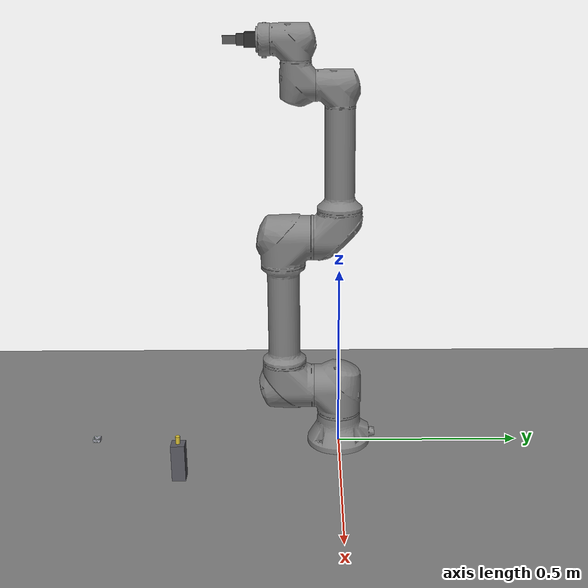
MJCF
<mujoco model="rb5 gripper pick-and-insert scene">

    <include file="rb5_gripper.xml"/>

    <visual>
        <headlight diffuse="0.7 0.7 0.7" ambient="0.35 0.35 0.35" specular="0.15 0.15 0.15"/>
        <rgba haze="0.15 0.15 0.15 1"/>
        <global azimuth="135" elevation="-20"/>
        <quality shadowsize="16384"/>
    </visual>

    <asset>
        <texture type="skybox" builtin="gradient"
                 rgb1="0.85 0.90 0.95"
                 rgb2="0.20 0.25 0.35"
                 width="512" height="3072"/>

        <!-- STL is in mm, so scale to meters -->
        <mesh name="hole_13_mesh"
              file="/home/chu/manipulator_control/meshes/hole_13.stl"
              scale="0.001 0.001 0.001"/>

        <mesh name="peg_mesh"
              file="/home/chu/manipulator_control/meshes/peg.stl"
              scale="0.001 0.001 0.001"/>
    </asset>

    <worldbody>
        <!-- lights -->
        <light name="main_light"
               pos="0.0 -0.2 2.2"
               dir="0.0 -0.1 -1.0"
               directional="true"/>

        <light name="side_light"
               pos="0.8 0.4 1.6"
               dir="-0.4 -0.5 -1.0"
               directional="true"
               diffuse="0.5 0.5 0.5"
               specular="0.1 0.1 0.1"/>

        <!-- cameras -->
        <camera name="overview"
                pos="1.10 0.40 1.35"
                xyaxes="0 -1 0 0 0 1"/>

        <camera name="hole_closeup"
                pos="0.35 -0.30 0.85"
                xyaxes="0 -1 0 0 0 1"/>

        <camera name="pick_closeup"
                pos="0.45 -0.20 0.65"
                xyaxes="0 -1 0 0 0 1"/>

        <!-- visual only -->
        <geom name="hole_13_visual"
              type="mesh"
              mesh="hole_13_mesh"
              pos="0.00 -0.68 0.0"
              quat="0.70710678 0.70710678 0 0"
              rgba="0.70 0.70 0.75 1"
              contype="0"
              conaffinity="0"/>

        <!-- collision only -->
        <body name="hole_collision" pos="0.00 -0.68 0.0" quat="0.70710678 0.70710678 0 0">
            <!--
              현재 값은 조금 넉넉한 시작점입니다.
              inner half size = 0.0068 -> opening 약 13.6 mm
              peg collision radius = 0.006 -> diameter 12 mm
            -->

            <!-- +X wall -->
            <geom name="hole_13_geom"
                  type="box"
                  pos="0.0084 0.0050 0.0"
                  size="0.0016 0.0050 0.0100"
                  rgba="0.2 0.8 0.2 0.15"
                  contype="2"
                  conaffinity="1"
                  margin="0.0005"
                  friction="1.0 0.005 0.0001"/>

            <!-- -X wall -->
            <geom name="hole_col_xn"
                  type="box"
                  pos="-0.0084 0.0050 0.0"
                  size="0.0016 0.0050 0.0100"
                  rgba="0.2 0.8 0.2 0.15"
                  contype="2"
                  conaffinity="1"
                  margin="0.0005"
                  friction="1.0 0.005 0.0001"/>

            <!-- +Z wall -->
            <geom name="hole_col_zp"
                  type="box"
                  pos="0.0 0.0050 0.0084"
                  size="0.0068 0.0050 0.0016"
                  rgba="0.2 0.8 0.2 0.15"
                  contype="2"
                  conaffinity="1"
                  margin="0.0005"
                  friction="1.0 0.005 0.0001"/>

            <!-- -Z wall -->
            <geom name="hole_col_zn"
                  type="box"
                  pos="0.0 0.0050 -0.0084"
                  size="0.0068 0.0050 0.0016"
                  rgba="0.2 0.8 0.2 0.15"
                  contype="2"
                  conaffinity="1"
                  margin="0.0005"
                  friction="1.0 0.005 0.0001"/>
        </body>

        <body name="hole_sites" pos="0.00 -0.68 0.0" quat="0.70710678 0.70710678 0 0">
            <site name="hole_bottom"    pos="0 0.000 0" size="0.0001" rgba="0 1 1 0"/>
            <site name="hole_center"    pos="0 0.005 0" size="0.0001" rgba="1 1 0 0"/>
            <site name="hole_entry"     pos="0 0.010 0" size="0.0001" rgba="0 1 0 0"/>
            <site name="hole_preinsert" pos="0 0.030 0" size="0.0001" rgba="1 0 1 0"/>
        </body>

        <!-- =========================================================
             Peg stand
             ========================================================= -->
        <body name="peg_stand" pos="0.20 -0.42 0.05">
            <geom name="peg_stand_geom"
                  type="box"
                  size="0.018 0.018 0.05"
                  rgba="0.35 0.35 0.38 1"
                  contype="2"
                  conaffinity="1"
                  margin="0.001"
                  friction="1.0 0.005 0.0001"/>
        </body>

        <body name="peg" pos="0.20 -0.42 0.1005" quat="0.70710678 0.70710678 0 0">
            <freejoint/>

            <!-- 화면에 보이는 peg -->
            <geom name="peg_visual"
                type="mesh"
                mesh="peg_mesh"
                rgba="0.85 0.75 0.20 1"
                contype="0"
                conaffinity="0"/>

            <!-- 실제 충돌 계산용 peg -->
            <geom name="peg_geom"
                type="cylinder"
                fromto="0 0.000 0  0 0.020 0"
                size="0.006"
                mass="0.03"
                rgba="0 0 0 0"
                contype="1"
                conaffinity="3"
                margin="0.0005"
                friction="1.2 0.01 0.0001"/>

            <site name="peg_base"   pos="0 0.000 0" size="0.0001" rgba="1 0 0 0"/>
            <site name="peg_center" pos="0 0.010 0" size="0.0001" rgba="0 1 0 0"/>
            <site name="peg_tip"    pos="0 0.020 0" size="0.0001" rgba="0 0 1 0"/>
        </body>
    </worldbody>
</mujoco>

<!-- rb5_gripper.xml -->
<mujoco model="rb5_850e_gripper">
  <compiler angle="radian" autolimits="true"/>

  <option timestep="0.001"
          integrator="implicit"
          gravity="0 0 -9.81"
          solver="Newton"
          iterations="200"
          ls_iterations="100"
          noslip_iterations="8"
          impratio="10"
          ccd_iterations="100"
          ccd_tolerance="1e-8">
    <flag multiccd="enable" nativeccd="enable"/>
  </option>

  <asset>
    <mesh name="link0_mesh" file="/home/chu/manipulator_control/rbpodo_ros2/rbpodo_description/meshes/rb5_850e/collision/link0.stl"/>
    <mesh name="link1_mesh" file="/home/chu/manipulator_control/rbpodo_ros2/rbpodo_description/meshes/rb5_850e/collision/link1.stl"/>
    <mesh name="link2_mesh" file="/home/chu/manipulator_control/rbpodo_ros2/rbpodo_description/meshes/rb5_850e/collision/link2.stl"/>
    <mesh name="link3_mesh" file="/home/chu/manipulator_control/rbpodo_ros2/rbpodo_description/meshes/rb5_850e/collision/link3.stl"/>
    <mesh name="link4_mesh" file="/home/chu/manipulator_control/rbpodo_ros2/rbpodo_description/meshes/rb5_850e/collision/link4.stl"/>
    <mesh name="link5_mesh" file="/home/chu/manipulator_control/rbpodo_ros2/rbpodo_description/meshes/rb5_850e/collision/link5.stl"/>
    <mesh name="link6_mesh" file="/home/chu/manipulator_control/rbpodo_ros2/rbpodo_description/meshes/rb5_850e/collision/link6.stl"/>
  </asset>

  <!--
    robot self-collision: OFF
    robot-ground/hole/peg collision: ON
    robot geom: contype=1, conaffinity=2
    scene env geom: contype=2, conaffinity=1
  -->
  <default class="main">
    <geom type="mesh" group="0" contype="1" conaffinity="2"/>
    <joint type="hinge" damping="0.1" armature="0.001"/>
  </default>

  <worldbody>
    <geom name="ground" type="plane" pos="0 0 0" size="5 5 0.1"
          rgba="0.5 0.5 0.5 1"
          friction="1 0.005 0.0001"
          contype="2" conaffinity="1"
          margin="0.001"/>

    <body name="link0" pos="0 0 0">
      <geom type="mesh" mesh="link0_mesh"/>

      <body name="link1" pos="0 0 0.1692" childclass="main">
        <inertial pos="5.7e-05 -0.005795 -0.034516"
                  quat="0.676677 0.181125 -0.183239 0.689729"
                  mass="4.147"
                  diaginertia="0.00940157 0.00878691 0.0073332"/>
        <joint name="base" axis="0 0 1" range="-3.14 3.14"/>
        <geom type="mesh" mesh="link1_mesh"/>

        <body name="link2" pos="0 0 0" childclass="main">
          <inertial pos="-3.7e-05 -0.121603 0.212933"
                    quat="0.999997 0.000348233 7.80187e-05 -0.00223104"
                    mass="9.633"
                    diaginertia="0.392214 0.388915 0.0219492"/>
          <joint name="shoulder" axis="0 1 0" range="-3.14 3.14"/>
          <geom type="mesh" mesh="link2_mesh"/>

          <body name="link3" pos="0 0 0.425" childclass="main">
            <inertial pos="2.1e-05 -0.015845 0.202568"
                      quat="0.999948 0.0100341 -5.40187e-05 -0.00170427"
                      mass="3.915"
                      diaginertia="0.11204 0.111832 0.0075271"/>
            <joint name="elbow" axis="0 1 0" range="-3.14 3.14"/>
            <geom type="mesh" mesh="link3_mesh"/>

            <body name="link4" pos="0 0 0.392" childclass="main">
              <inertial pos="5.7e-05 -0.106332 0.025881"
                        quat="0.986693 0.162394 -0.00142514 0.00799378"
                        mass="1.452"
                        diaginertia="0.00162904 0.00160108 0.00118182"/>
              <joint name="wrist1" axis="0 1 0" range="-3.14 3.14"/>
              <geom type="mesh" mesh="link4_mesh"/>

              <body name="link5" pos="0 -0.1107 0.1107" childclass="main">
                <inertial pos="-2.8e-05 -0.025911 -0.004363"
                          quat="0.812497 0.582798 -0.00662653 0.0123056"
                          mass="1.454"
                          diaginertia="0.00163147 0.00160354 0.00118381"/>
                <joint name="wrist2" axis="0 0 1" range="-3.14 3.14"/>
                <geom type="mesh" mesh="link5_mesh"/>

                <body name="link6" pos="0 0 0" childclass="main">
                  <inertial pos="-2e-06 -0.079964 -0.000494"
                            quat="0.706709 -0.0427371 -0.0387873 0.705146"
                            mass="0.243"
                            diaginertia="0.000243707 0.000147897 0.000142261"/>
                  <joint name="wrist3" axis="0 1 0" range="-3.14 3.14"/>
                  <geom type="mesh" mesh="link6_mesh"/>

                  <!-- =====================================================
                       Gripper base
                       ===================================================== -->
                  <body name="gripper_base" pos="0 -0.0967 0">
                    <inertial pos="0 -0.018 0"
                              mass="0.45"
                              diaginertia="0.00035 0.00030 0.00020"/>

                    <!-- palm -->
                    <geom name="gripper_palm"
                          type="box"
                          pos="0 -0.014 0"
                          size="0.024 0.014 0.018"
                          mass="0.30"
                          rgba="0.18 0.18 0.18 1"
                          contype="1" conaffinity="2"
                          friction="1.0 0.005 0.0001"
                          margin="0.001"/>

                    <!-- guide block -->
                    <geom name="gripper_nose"
                          type="box"
                          pos="0 -0.038 0"
                          size="0.012 0.010 0.014"
                          mass="0.05"
                          rgba="0.25 0.25 0.25 1"
                          contype="1" conaffinity="2"
                          friction="1.0 0.005 0.0001"
                          margin="0.001"/>

                    <!-- left finger -->
                    <body name="left_finger" pos="0.004 -0.052 0">
                      <joint name="grip_left"
                             type="slide"
                             axis="1 0 0"
                             range="0 0.012"
                             damping="15"
                             armature="0.0002"/>
                      <inertial pos="0 -0.005 0"
                                mass="0.05"
                                diaginertia="1.2e-05 1.2e-05 4.0e-06"/>

                      <geom name="left_finger_geom"
                            type="box"
                            pos="0 0 0"
                            size="0.003 0.030 0.010"
                            mass="0.05"
                            rgba="0.35 0.35 0.35 1"
                            contype="1" conaffinity="2"
                            friction="1.2 0.01 0.0001"
                            margin="0.0007"/>

                      <geom name="left_pad"
                            type="box"
                            pos="-0.0012 -0.006 0"
                            size="0.0012 0.012 0.008"
                            mass="0.01"
                            rgba="0.1 0.1 0.1 1"
                            contype="1" conaffinity="2"
                            friction="2.0 0.02 0.0002"
                            margin="0.0005"/>
                    </body>

                    <!-- right finger -->
                    <body name="right_finger" pos="-0.004 -0.052 0">
                      <joint name="grip_right"
                             type="slide"
                             axis="-1 0 0"
                             range="0 0.012"
                             damping="15"
                             armature="0.0002"/>
                      <inertial pos="0 -0.005 0"
                                mass="0.05"
                                diaginertia="1.2e-05 1.2e-05 4.0e-06"/>

                      <geom name="right_finger_geom"
                            type="box"
                            pos="0 0 0"
                            size="0.003 0.030 0.010"
                            mass="0.05"
                            rgba="0.35 0.35 0.35 1"
                            contype="1" conaffinity="2"
                            friction="1.2 0.01 0.0001"
                            margin="0.0007"/>

                      <geom name="right_pad"
                            type="box"
                            pos="0.0012 -0.006 0"
                            size="0.0012 0.012 0.008"
                            mass="0.01"
                            rgba="0.1 0.1 0.1 1"
                            contype="1" conaffinity="2"
                            friction="2.0 0.02 0.0002"
                            margin="0.0005"/>
                    </body>

                    <!-- hidden reference sites -->
                    <site name="tcp"
                          pos="0 -0.070 0"
                          size="0.0001"
                          rgba="1 0 0 0"/>

                    <site name="grasp_center"
                          pos="0 -0.070 0"
                          size="0.0001"
                          rgba="0 1 0 0"/>
                  </body>
                </body>
              </body>
            </body>
          </body>
        </body>
      </body>
    </body>
  </worldbody>

  <!-- 좌우 핑거 동기화 -->
  <equality>
    <joint joint1="grip_right" joint2="grip_left" polycoef="0 1 0 0 0"/>
  </equality>

  <actuator>
    <!-- arm 6 joints -->
    <motor name="base_motor" joint="base" ctrllimited="true" ctrlrange="-100 100" gear="1"/>
    <motor name="shoulder_motor" joint="shoulder" ctrllimited="true" ctrlrange="-100 100" gear="1"/>
    <motor name="elbow_motor" joint="elbow" ctrllimited="true" ctrlrange="-100 100" gear="1"/>
    <motor name="wrist1_motor" joint="wrist1" ctrllimited="true" ctrlrange="-100 100" gear="1"/>
    <motor name="wrist2_motor" joint="wrist2" ctrllimited="true" ctrlrange="-100 100" gear="1"/>
    <motor name="wrist3_motor" joint="wrist3" ctrllimited="true" ctrlrange="-100 100" gear="1"/>

    <!-- gripper -->
    <position name="gripper_act"
              joint="grip_left"
              ctrllimited="true"
              ctrlrange="0 0.012"
              kp="800"
              forcelimited="true"
              forcerange="-20 20"/>
  </actuator>

  <keyframe>
    <!-- qpos:
         [base, shoulder, elbow, wrist1, wrist2, wrist3, grip_left, grip_right] -->
    <key name="home" qpos="0 0 0 0 0 0 0.010 0.010"/>
    <key name="grip_close" qpos="0 0 0 0 0 0 0.000 0.000"/>
    <key name="grip_open" qpos="0 0 0 0 0 0 0.012 0.012"/>
  </keyframe>
</mujoco>
